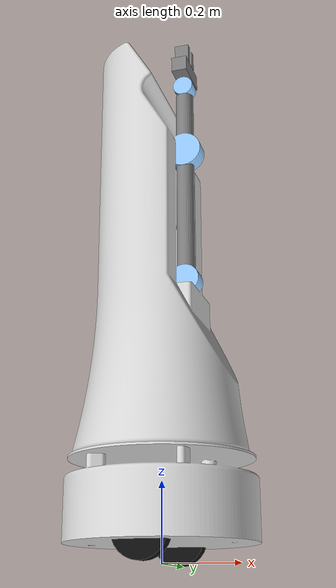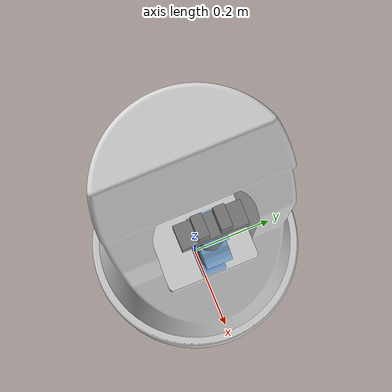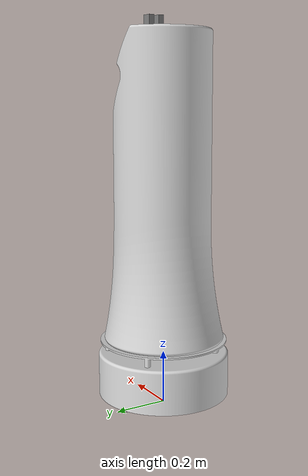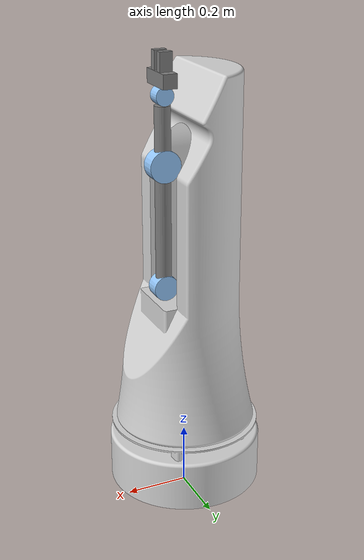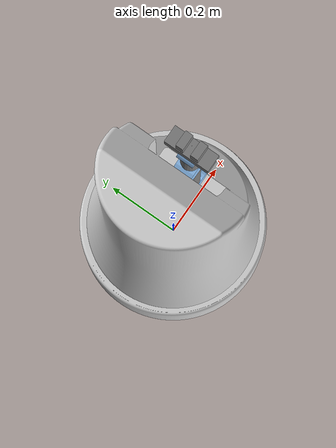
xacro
<?xml version="1.0"?>
<robot name="rav" xmlns:xacro="http://www.ros.org/wiki/xacro">

  <xacro:include filename="$(find rav_description)/urdf/platform_with_mesh_and_wheels.urdf.xacro"/>
  <xacro:include filename="$(find rav_description)/urdf/rav_body.urdf.xacro"/>
  <xacro:include filename="$(find rav_description)/urdf/arm.urdf.xacro"/>

  <xacro:rav_platform/>
  <xacro:rav_body parent_link="platform_base_link" xyz="0 0 0.2572" rpy="0 0 0"/>

  <!-- Braço montado sobre o corpo do robô -->
  <xacro:arm
    parent_link="platform_base_link"
    prefix="arm_"
    xyz="0.07 0 0.69"
    rpy="0 0 1.57"/>

</robot>

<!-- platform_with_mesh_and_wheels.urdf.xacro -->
<robot name="rav_platform" xmlns:xacro="http://www.ros.org/wiki/xacro">

  <xacro:macro name="rav_platform" params="">

    <xacro:property name="platform_mesh" value="platform.dae"/>
    <xacro:property name="platform_mesh_scale" value="0.001 0.001 0.001"/>

    <xacro:property name="wheel_radius" value="0.07"/>
    <xacro:property name="wheel_width"  value="0.038"/>

    <xacro:property name="platform_diameter" value="0.50"/>
    <xacro:property name="platform_radius" value="${platform_diameter/2.0}"/>

    <xacro:property name="wheel_y" value="${platform_radius + wheel_width/2.0 - 0.43}"/>
    <xacro:property name="wheel_z" value="${wheel_radius}"/>

    <link name="base_link"/>

    <link name="platform_base_link">
      <visual>
        <origin xyz="0 0 0.048" rpy="0 0 1.57"/>
        <geometry>
          <mesh filename="package://rav_description/meshes/${platform_mesh}" scale="${platform_mesh_scale}"/>
        </geometry>
      </visual>

      <collision>
        <origin xyz="-0.86 -0.25 0.04" rpy="0 0 1.57"/>
        <geometry>
          <mesh filename="package://rav_description/meshes/${platform_mesh}" scale="${platform_mesh_scale}"/>
        </geometry>
      </collision>

      <inertial>
        <origin xyz="-0.86 -0.25 0.04" rpy="0 0 0"/>
        <mass value="35.0"/>
        <inertia ixx="1.0" ixy="0.0" ixz="0.0" iyy="1.0" iyz="0.0" izz="1.0"/>
      </inertial>
    </link>

    <joint name="base_to_platform" type="fixed">
      <parent link="base_link"/>
      <child link="platform_base_link"/>
      <origin xyz="0 0 0" rpy="0 0 0"/>
    </joint>

    <link name="wheel_left_link">
      <visual>
        <origin xyz="0 0 0" rpy="1.57 0 0"/>
        <geometry>
          <cylinder radius="${wheel_radius}" length="${wheel_width}"/>
        </geometry>
        <material name="wheel_black">
          <color rgba="0.05 0.05 0.05 1.0"/>
        </material>
      </visual>
    </link>

    <joint name="wheel_left_joint" type="continuous">
      <parent link="platform_base_link"/>
      <child link="wheel_left_link"/>
      <origin xyz="0 ${wheel_y} ${wheel_z}" rpy="0 0 0"/>
      <axis xyz="0 1 0"/>
    </joint>

    <link name="wheel_right_link">
      <visual>
        <origin xyz="0 0 0" rpy="1.57 0 0"/>
        <geometry>
          <cylinder radius="${wheel_radius}" length="${wheel_width}"/>
        </geometry>
        <material name="wheel_black">
          <color rgba="0.05 0.05 0.05 1.0"/>
        </material>
      </visual>
    </link>

    <joint name="wheel_right_joint" type="continuous">
      <parent link="platform_base_link"/>
      <child link="wheel_right_link"/>
      <origin xyz="0 ${-wheel_y} ${wheel_z}" rpy="0 0 0"/>
      <axis xyz="0 1 0"/>
    </joint>

  </xacro:macro>

</robot>

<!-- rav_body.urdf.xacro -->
<robot name="rav_body" xmlns:xacro="http://www.ros.org/wiki/xacro">

  <xacro:macro name="rav_body" params="parent_link:=platform_base_link xyz:='0 0 0.2572' rpy:='0 0 0'">

    <link name="body_link">
      <visual>
        <origin xyz="0 0 -0.2572" rpy="0 0 1.57"/>
        <geometry>
          <mesh filename="package://rav_description/meshes/RAV_BODY.dae" scale="0.001 0.001 0.001"/>
        </geometry>
      </visual>

      <collision>
        <origin xyz="0 0 -0.2572" rpy="0 0 1.57"/>
        <geometry>
          <mesh filename="package://rav_description/meshes/RAV_BODY.dae" scale="0.001 0.001 0.001"/>
        </geometry>
      </collision>

      <inertial>
        <origin xyz="0 0 -0.2572" rpy="0 0 1.57"/>
        <mass value="10.0"/>
        <inertia ixx="1.0" ixy="0.0" ixz="0.0" iyy="1.0" iyz="0.0" izz="1.0"/>
      </inertial>
    </link>

    <joint name="platform_to_body_joint" type="fixed">
      <parent link="${parent_link}"/>
      <child link="body_link"/>
      <origin xyz="${xyz}" rpy="${rpy}"/>
    </joint>

  </xacro:macro>

</robot>

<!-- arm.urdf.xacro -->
<robot xmlns:xacro="http://www.ros.org/wiki/xacro" name="arm">

  <xacro:arg name="use_sim" default="false"/>

  <xacro:macro name="arm" params="parent_link prefix xyz:='0 0 0' rpy:='0 0 0'">

    <xacro:property name="M_PI" value="3.14159"/>
    <xacro:property name="mass_1" value="20"/>
    <xacro:property name="mass_2" value="5"/>
    <xacro:property name="mass_3" value="3"/>
    <xacro:property name="mass_4" value="3"/>
    <xacro:property name="mass_5" value="1"/>
    <xacro:property name="mass_6" value="0.2"/>

    <xacro:property name="radius_1" value="0.1"/>
    <xacro:property name="radius_2" value="0.05"/>
    <xacro:property name="radius_3" value="0.025"/>
    <xacro:property name="radius_4" value="0.025"/>
    <xacro:property name="radius_5" value="0.022"/>
    <xacro:property name="radius_6" value="0.02"/>

    <xacro:property name="length_1" value="0.15"/>
    <xacro:property name="length_2" value="0.4"/>
    <xacro:property name="length_3" value="0.4"/>
    <xacro:property name="length_4" value="0.2"/>
    <xacro:property name="length_5" value="0.12"/>
    <xacro:property name="length_6" value="0.07"/>

    <!-- Original -->

    <material name="Black"><color rgba="0.0 0.0 0.0 1.0"/></material>
    <material name="Red"><color rgba="0.8 0.0 0.0 1.0"/></material>
    <material name="Blue"><color rgba="0.0 0.0 1.0 1.0"/></material>
    <material name="LightBlue"><color rgba="0.589 0.793 1.0 1.0"/></material>
    <material name="Grey"><color rgba="0.5 0.5 0.5 1.0"/></material>
    <material name="White"><color rgba="1.0 1.0 1.0 1.0"/></material>

    <xacro:macro name="inertial_block" params="mass length radius">
      <inertial>
        <origin xyz="0 0 ${length/2}" rpy="0 0 0"/>
        <mass value="${mass}"/>
        <inertia
          ixx="${mass / 12.0 * (2*radius*2*radius + length*length)}" ixy="0.0" ixz="0.0"
          iyy="${mass / 12.0 * (length*length + 2*radius*2*radius)}" iyz="0.0"
          izz="${mass / 12.0 * (2*radius*2*radius + 2*radius*2*radius)}"/>
      </inertial>
    </xacro:macro>

    <xacro:macro name="gazebo_grey_link_color_block" params="link_name">
      <gazebo reference="${link_name}">
        <visual>
          <material>
            <ambient>0.5 0.5 0.5 1.0</ambient>
            <diffuse>0.56666695 0.56666695 0.56666695 1.0</diffuse>
            <specular>0.6000003 0.6000003 0.6000003 1.0</specular>
          </material>
        </visual>
      </gazebo>
    </xacro:macro>

    <xacro:macro name="gazebo_blue_link_color_block" params="link_name">
      <gazebo reference="${link_name}">
        <visual>
          <material>
            <ambient>0.589 0.793 1.0 1.0</ambient>
            <diffuse>0.56666695 0.56666695 0.56666695 1.0</diffuse>
            <specular>0.6000003 0.6000003 0.6000003 1.0</specular>
          </material>
        </visual>
      </gazebo>
    </xacro:macro>

    <!-- Junta de montagem do braço no RAV -->
    <joint name="${prefix}mount_joint" type="fixed">
      <origin xyz="${xyz}" rpy="${rpy}"/>
      <parent link="${parent_link}"/>
      <child link="${prefix}base_link"/>
    </joint>

    <link name="${prefix}base_link">
      <xacro:inertial_block mass="${mass_3/4.0}" length="${radius_3*2.0}" radius="${radius_3*1.6}"/>

      <visual>
      <origin xyz="0 0 ${radius_3*1.6}" rpy="0 ${M_PI/2.0} 0"/>
      <geometry>
        <cylinder radius="${radius_3*1.6}" length="${radius_3*2.0}"/>
      </geometry>
      <material name="LightBlue"/>
    </visual>

    <collision>
      <origin xyz="0 0 ${radius_3*1.6}" rpy="0 ${M_PI/2.0} 0"/>
      <geometry>
        <cylinder radius="${radius_3*1.6}" length="${radius_3*2.0}"/>
      </geometry>
    </collision>
    </link>

    <joint name="${prefix}joint_2" type="revolute">
      <origin xyz="0 0 ${radius_3*1.6}" rpy="0 0 0"/>
      <parent link="${prefix}base_link"/>
      <child link="${prefix}link_2"/>
      <axis xyz="1 0 0"/>
      <limit lower="0.0" upper="${M_PI * 2}" effort="300.0" velocity="1.0"/>
    </joint>

    <link name="${prefix}link_2">
      <xacro:inertial_block mass="${mass_3}" length="${length_3}" radius="${radius_3}"/>
      <visual>
        <origin xyz="0 0 ${length_3/2.0}" rpy="0 0 0"/>
        <geometry><cylinder radius="${radius_3}" length="${length_3}"/></geometry>
        <material name="Grey"/>
      </visual>
      <collision>
        <origin xyz="0 0 ${length_3/2.0}" rpy="0 0 0"/>
        <geometry><cylinder radius="${radius_3}" length="${length_3}"/></geometry>
      </collision>
    </link>
    <xacro:gazebo_grey_link_color_block link_name="${prefix}link_2"/>

    <link name="${prefix}link_2_endlink">
      <xacro:inertial_block mass="${mass_3/4.0}" length="${radius_3*2.0}" radius="${radius_3}"/>

      <visual>
        <origin xyz="0 0 ${radius_3}" rpy="0 0 0"/>
        <geometry>
          <cylinder radius="${radius_3*2}" length="${radius_3*2.0}"/>
        </geometry>
        <material name="LightBlue"/>
      </visual>

      <collision>
        <origin xyz="0 0 ${radius_3}" rpy="0 0 0"/>
        <geometry>
          <cylinder radius="${radius_3*2}" length="${radius_3*2.0}"/>
        </geometry>
      </collision>
    </link>

    <joint name="${prefix}link_2_endjoint" type="fixed">
      <origin xyz="${-radius_3} 0 ${length_3 - 0.01}" rpy="0 ${M_PI/2.0} 0"/>
      <parent link="${prefix}link_2"/>
      <child link="${prefix}link_2_endlink"/>
    </joint>

    <gazebo reference="${prefix}link_2_endjoint">
      <disableFixedJointLumping>true</disableFixedJointLumping>
      <preserveFixedJoint>true</preserveFixedJoint>
    </gazebo>

    <joint name="${prefix}joint_3" type="revolute">
      <origin xyz="0 0 ${length_3}" rpy="0 0 0"/>
      <parent link="${prefix}link_2"/>
      <child link="${prefix}link_3"/>
      <axis xyz="1 0 0"/>
      <limit lower="0.0" upper="${M_PI * 2}" effort="300.0" velocity="1.0"/>
    </joint>

    <link name="${prefix}link_3">
      <xacro:inertial_block mass="${mass_4}" length="${length_4}" radius="${radius_4}"/>
          <visual>
      <origin xyz="0 0 ${(length_4 - radius_5*1.3)/2.0}" rpy="0 0 0"/>
      <geometry>
        <cylinder radius="${radius_4}" length="${length_4 - radius_5*1.3}"/>
      </geometry>
      <material name="Grey"/>
    </visual>

    <collision>
      <origin xyz="0 0 ${(length_4 - radius_5*1.3)/2.0}" rpy="0 0 0"/>
      <geometry>
        <cylinder radius="${radius_4}" length="${length_4 - radius_5*1.3}"/>
      </geometry>
    </collision>
    </link>
    <xacro:gazebo_grey_link_color_block link_name="${prefix}link_3"/>

    <joint name="${prefix}joint_4" type="revolute">
      <origin xyz="0 0 ${length_4}" rpy="0 0 0"/>
      <parent link="${prefix}link_3"/>
      <child link="${prefix}link_4"/>
      <axis xyz="1 0 0"/>
      <limit lower="-${M_PI}" upper="${M_PI}" effort="300.0" velocity="1.0"/>
    </joint>

    <link name="${prefix}link_4">
      <xacro:inertial_block mass="${mass_5}" length="${length_5}" radius="${radius_5}"/>

      <!-- Cilindro da junta 4 -->
      <visual>
        <origin xyz="0 0 0" rpy="0 ${M_PI/2.0} 0"/>
        <geometry>
          <cylinder radius="${radius_5*1.3}" length="${radius_5*2.0}"/>
        </geometry>
        <material name="LightBlue"/>
      </visual>

      <collision>
        <origin xyz="0 0 0" rpy="0 ${M_PI/2.0} 0"/>
        <geometry>
          <cylinder radius="${radius_5*1.3}" length="${radius_5*2.0}"/>
        </geometry>
      </collision>

      <!-- Retângulo apoiado no limite superior do cilindro -->
      <visual>
        <origin xyz="0 0 ${radius_5*2.3}" rpy="0 ${M_PI/2.0} 0"/>
        <geometry>
          <box size="${radius_5*2} ${radius_5*2} ${length_5}"/>
        </geometry>
        <material name="Grey"/>
      </visual>

      <collision>
        <origin xyz="0 0 ${radius_5*2.3}" rpy="0 ${M_PI/2.0} 0"/>
        <geometry>
          <box size="${radius_5*2} ${radius_5*2} ${length_5}"/>
        </geometry>
      </collision>
    </link>

    <joint name="${prefix}gripper_joint_1" type="prismatic">
      <origin xyz="0 0 ${radius_5*2.3 + length_6/2.0}" rpy="0 0 0"/>
      <parent link="${prefix}link_4"/>
      <child link="${prefix}gripper_link_1"/>
      <axis xyz="1 0 0"/>
      <limit lower="${radius_6/2.0}" upper="0.03" effort="100.0" velocity="1.0"/>
    </joint>

    <joint name="${prefix}gripper_joint_2" type="prismatic">
      <origin xyz="0 0 ${radius_5*2.3 + length_6/2.0}" rpy="0 0 0"/>
      <parent link="${prefix}link_4"/>
      <child link="${prefix}gripper_link_2"/>
      <axis xyz="1 0 0"/>
      <limit lower="-0.03" upper="${-radius_6/2.0}" effort="100.0" velocity="1.0"/>
    </joint>

    <joint name="${prefix}gripper_frame_joint" type="fixed">
      <origin xyz="0 0 ${radius_5*2.3 + length_6}" rpy="0 0 0"/>
      <parent link="${prefix}link_4"/>
      <child link="${prefix}gripper_frame_cp"/>
    </joint>

    <link name="${prefix}gripper_link_1">
      <xacro:inertial_block mass="${mass_6}" length="${length_6}" radius="${radius_6}"/>
      <visual>
        <origin xyz="0 0 ${radius_6/2.0}" rpy="0 0 0"/>
        <geometry><box size="${radius_6} ${radius_6*2} ${length_6}"/></geometry>
        <material name="Grey"/>
      </visual>
      <collision>
        <origin xyz="0 0 ${radius_6/2.0}" rpy="0 0 0"/>
        <geometry><box size="${radius_6*2} ${radius_6*2} ${length_6}"/></geometry>
      </collision>
    </link>
    <xacro:gazebo_grey_link_color_block link_name="${prefix}gripper_link_1"/>

    <link name="${prefix}gripper_link_2">
      <xacro:inertial_block mass="${mass_6}" length="${length_6}" radius="${radius_6}"/>
      <visual>
        <origin xyz="0 0 ${radius_6/2.0}" rpy="0 0 0"/>
        <geometry><box size="${radius_6} ${radius_6*2} ${length_6}"/></geometry>
        <material name="Grey"/>
      </visual>
      <collision>
        <origin xyz="0 0 ${radius_6/2.0}" rpy="0 0 0"/>
        <geometry><box size="${radius_6*2} ${radius_6*2} ${length_6}"/></geometry>
      </collision>
    </link>
    <xacro:gazebo_grey_link_color_block link_name="${prefix}gripper_link_2"/>

    <link name="${prefix}gripper_frame_cp">
      <xacro:inertial_block mass="${0.001}" length="${0.001}" radius="${0.001}"/>
      <visual>
        <origin xyz="0 0 0" rpy="0 0 0"/>
        <geometry><box size="${0.001} ${0.001} ${0.001}"/></geometry>
        <material name="Grey"/>
      </visual>
      <collision>
        <origin xyz="0 0 0" rpy="0 0 0"/>
        <geometry><box size="${0.001} ${0.001} ${0.001}"/></geometry>
      </collision>
    </link>

    <xacro:if value="$(arg use_sim)">
      <ros2_control name="${prefix}GazeboSystem" type="system">
        <hardware>
          <plugin>gazebo_ros2_control/GazeboSystem</plugin>
        </hardware>

        <joint name="${prefix}joint_2">
          <command_interface name="position"/>
          <state_interface name="position"/>
          <state_interface name="velocity"/>
        </joint>

        <joint name="${prefix}joint_3">
          <command_interface name="position"/>
          <state_interface name="position"/>
          <state_interface name="velocity"/>
        </joint>

        <joint name="${prefix}joint_4">
          <command_interface name="position"/>
          <state_interface name="position"/>
          <state_interface name="velocity"/>
        </joint>

        <joint name="${prefix}gripper_joint_1">
          <command_interface name="position"/>
          <state_interface name="position"/>
          <state_interface name="velocity"/>
        </joint>

        <joint name="${prefix}gripper_joint_2">
          <command_interface name="position"/>
          <state_interface name="position"/>
          <state_interface name="velocity"/>
        </joint>
      </ros2_control>

      <gazebo>
        <plugin filename="libgazebo_ros2_control.so" name="${prefix}gazebo_ros2_control">
          <parameters>$(find rav_description)/config/arm_controllers.yaml</parameters>
        </plugin>
      </gazebo>
    </xacro:if>

  </xacro:macro>

</robot>
